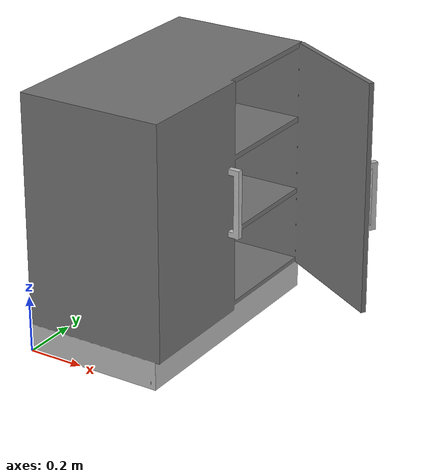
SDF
<?xml version='1.0'?>
<sdf version='1.7'>
  <model name='balconycabinet'>
    <link name='link'>
      <pose>0 0 0 0 0 0</pose>
      <visual name='visual'>
        <geometry>
          <mesh>
            <uri>/root/workspace/self_gazebo_models/balconycabinet/meshes/model.dae</uri>
          </mesh>
        </geometry>
      </visual>
      <collision name='collision'>
        <geometry>
          <mesh>
            <uri>/root/workspace/self_gazebo_models/balconycabinet/meshes/model.dae</uri>
            <scale>1 1 1</scale>
          </mesh>
        </geometry>
      </collision>
    </link>
    <static>1</static>
    <allow_auto_disable>1</allow_auto_disable>
  </model>
</sdf>
